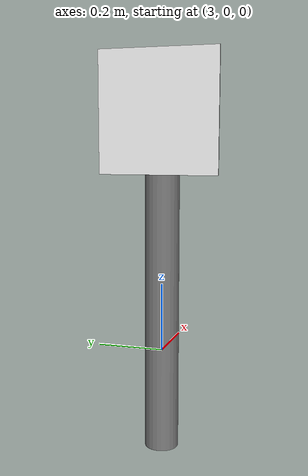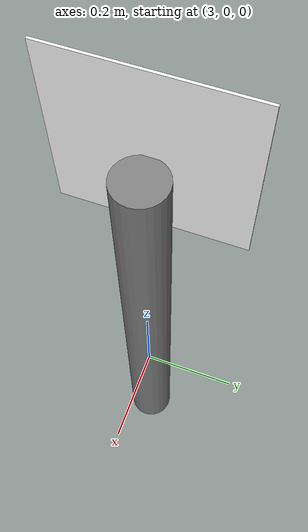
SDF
<?xml version='1.0'?>
<sdf version='1.8'>
  <model name='aruco_markers'>
    <static>true</static>
    <pose>3 0 0 0 0 0</pose> <!-- Only need to change this pose to move the entire model -->

    <!-- Post/Pole - Main link -->
    <link name='post_link'>
      <pose>0 0 0.2 0 0 0</pose>
      <visual name='post_visual'>
        <geometry>
          <cylinder>
            <radius>0.05</radius>
            <length>1</length>
          </cylinder>
        </geometry>
        <material>
          <ambient>0.5 0.5 0.5 1</ambient>
          <diffuse>0.5 0.5 0.5 1</diffuse>
          <specular>0.1 0.1 0.1 1</specular>
          <emissive>0 0 0 1</emissive>
        </material>
      </visual>
      <collision name='post_collision'>
        <geometry>
          <cylinder>
            <radius>0.025</radius>
            <length>1.0</length>
          </cylinder>
        </geometry>
      </collision>

      <!-- ArUco plate as part of the same link -->
      <visual name='aruco_plate_visual'>
        <pose>-0.05 0 0.5 0 1.5708 0</pose> <!-- Relative to post center -->
        <geometry>
          <box>
            <size>0.35 0.35 0.005</size>
          </box>
        </geometry>
        <material>
          <pbr>
            <metal>
              <albedo_map>textures/aruco01.png</albedo_map>
            </metal>
          </pbr>
        <ambient>1 1 1 1</ambient>
        <diffuse>1 1 1 1</diffuse>
        <specular>0.1 0.1 0.1 1</specular>
        <emissive>0 0 0 1</emissive>
        </material>
      </visual>

      <collision name='aruco_plate_collision'>
        <pose>0.1 0 0.5 0 1.5708 0</pose> <!-- Same relative position -->
        <geometry>
          <box>
            <size>0.35 0.35 0.005</size>
          </box>
        </geometry>
      </collision>
    </link>
  </model>
</sdf>
